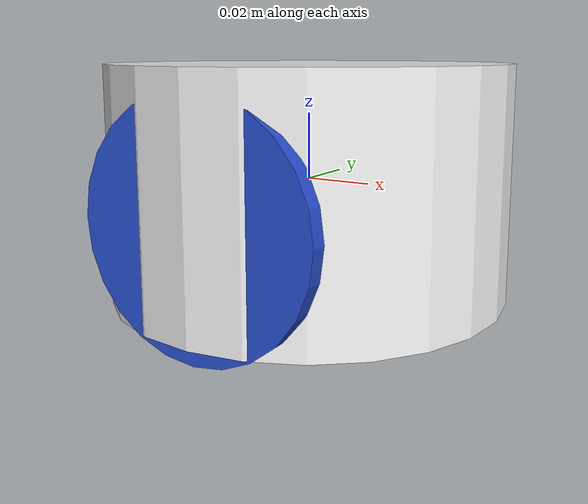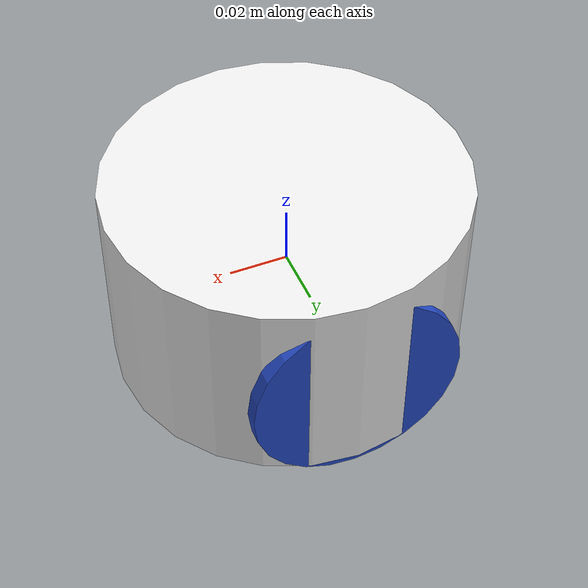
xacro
<?xml version="1.0"?>
<robot xmlns:xacro="http://www.ros.org/wiki/xacro"  name="kabot">
    <xacro:include filename="chassis.xacro"/>
    <xacro:include filename="wheel.xacro"/>

    <xacro:wheel name="left_wheel" origin="0 ${chassis_radius-0.005} -0.005" parent="chassis_link" direction="1"/>
    <xacro:wheel name="right_wheel" origin="0 -${chassis_radius-0.005} -0.005" parent="chassis_link" direction="-1"/>
</robot>

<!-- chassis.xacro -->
<robot xmlns:xacro="http://www.ros.org/wiki/xacro">
  <xacro:include filename="materials.xacro"/>

  <xacro:property name="chassis_radius" value="0.06"/>
  <xacro:property name="chassis_height" value="0.07"/>

  <link name="base_link"></link>
  <link name="footprint_link"></link>
  <link name="chassis_link">
    <visual>
      <geometry>
        <cylinder radius="${chassis_radius}" length="${chassis_height}"/>
      </geometry>
      <material name="white"/>
    </visual>
  </link>

  <joint name="footprint_joint" type="fixed">
    <parent link="base_link"/>
    <child link="footprint_link"/>
    <origin xyz="0.0 0.0 -${chassis_height/2}"/>
  </joint>

  <joint name="chassis_joint" type="fixed">
    <parent link="base_link"/>
    <child link="chassis_link"/>
    <origin xyz="0.0 0.0 0.0"/>
  </joint>
</robot>

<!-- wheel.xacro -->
<robot xmlns:xacro="http://www.ros.org/wiki/xacro">
    <xacro:macro name="wheel" params="origin name parent joint_type='continuous' direction wheel_radius=0.035 wheel_height=0.005">
        <link name="${name}_link">
            <visual>
                <geometry>
                    <cylinder radius="${wheel_radius}" length="${wheel_height}"/>
                </geometry>
                <material name="blue"/>
            </visual>
        </link>

        <joint name="${name}_joint" type="${joint_type}">
            <parent link="${parent}"/>
            <child link="${name}_link"/>
            <origin xyz="${origin}" rpy="-${pi/2} 0 0"/>
            <axis xyz="0 0 ${direction}"/>
        </joint>
    </xacro:macro>
</robot>
